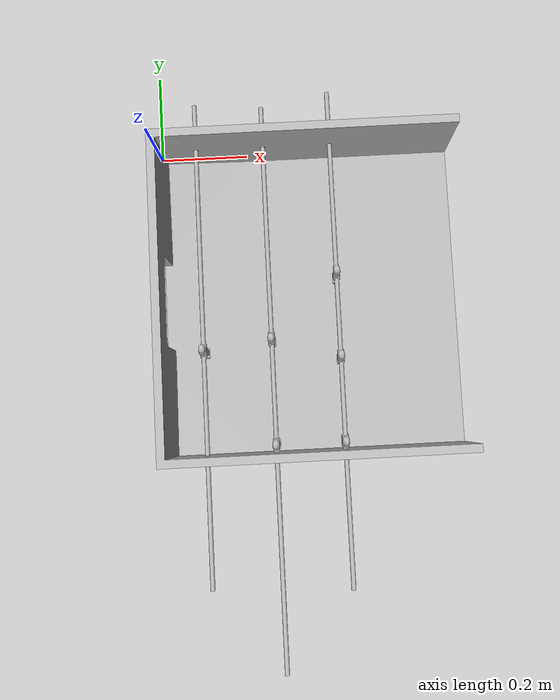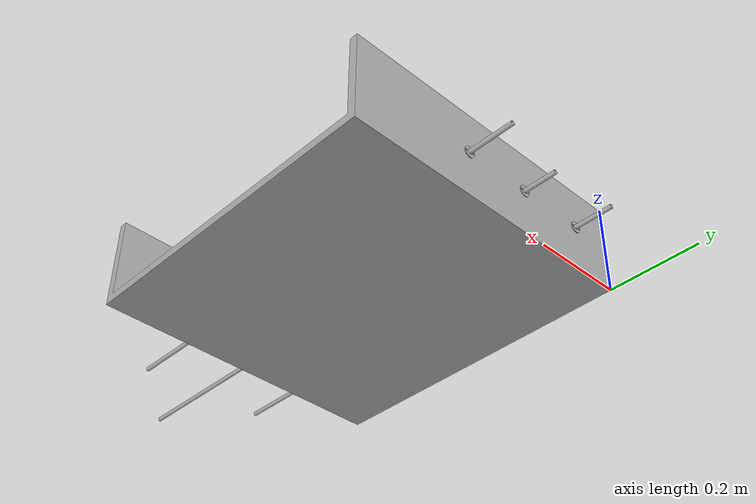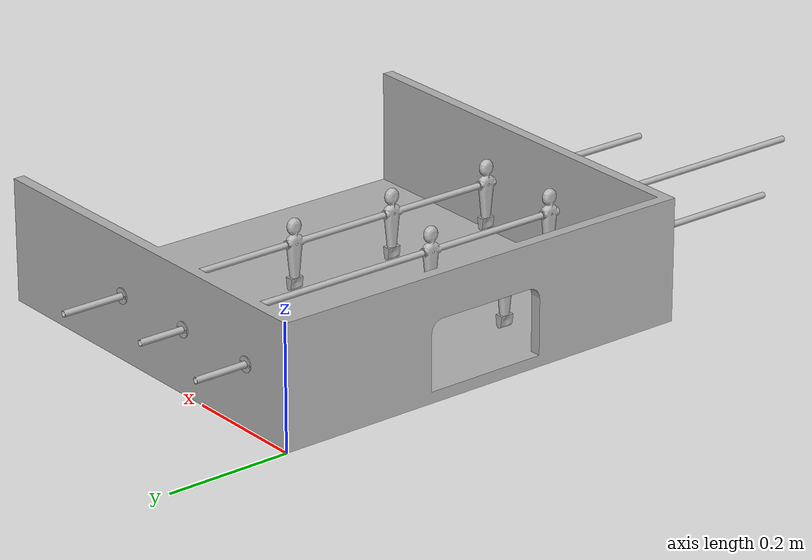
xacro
<?xml version="1.0" ?>
<robot name="futfullv5" xmlns:xacro="http://www.ros.org/wiki/xacro">

<xacro:include filename="$(find futfullv5_description)/urdf/materials.xacro" />
<xacro:include filename="$(find futfullv5_description)/urdf/futfullv5.trans" />
<xacro:include filename="$(find futfullv5_description)/urdf/futfullv5.gazebo" />

<link name="base_link">
  <inertial>
    <origin rpy="0 0 0" xyz="0.29247732204403404 -0.35807988890197734 0.05089353108091054"/>
    <mass value="1160"/>
    <inertia ixx="1000" ixy="0" ixz="0" iyy="1000" iyz="0" izz="1000"/>
  </inertial>
  <visual>
    <origin rpy="0 0 0" xyz="0 0 0"/>
    <geometry>
      <mesh filename="package://futfullv5_description/meshes/base_link.stl" scale="0.001 0.001 0.001"/>
    </geometry>
    <material name="silver"/>
  </visual>
  <collision>
    <origin rpy="0 0 0" xyz="0 0 0"/>
    <geometry>
      <mesh filename="package://futfullv5_description/meshes/base_link.stl" scale="0.001 0.001 0.001"/>
    </geometry>
  </collision>
</link>

<link name="link_fill_golie_1">
  <inertial>
    <origin rpy="0 0 0" xyz="-3.8274426683582163e-10 0.015063699106974108 4.768375000407943e-10"/>
    <mass value="0.006751086263023987"/>
    <inertia ixx="0.0" ixy="0.0" ixz="0.0" iyy="0.0" iyz="0.0" izz="0.0"/>
  </inertial>
  <visual>
    <origin rpy="0 0 0" xyz="-0.093 0.018 -0.103"/>
    <geometry>
      <mesh filename="package://futfullv5_description/meshes/link_fill_golie_1.stl" scale="0.001 0.001 0.001"/>
    </geometry>
    <material name="silver"/>
  </visual>
  <collision>
    <origin rpy="0 0 0" xyz="-0.093 0.018 -0.103"/>
    <geometry>
      <mesh filename="package://futfullv5_description/meshes/link_fill_golie_1.stl" scale="0.001 0.001 0.001"/>
    </geometry>
  </collision>
</link>

<link name="link_golie_1">
  <inertial>
    <origin rpy="0 0 0" xyz="-0.01799902092656594 -0.4632532318725868 -0.028375838044258958"/>
    <mass value="0.33174728345156196"/>
    <inertia ixx="0.012235" ixy="0.0" ixz="0.0" iyy="0.000237" iyz="-2.8e-05" izz="0.012006"/>
  </inertial>
  <visual>
    <origin rpy="0 0 0" xyz="-0.111 -0.0015 -0.121"/>
    <geometry>
      <mesh filename="package://futfullv5_description/meshes/link_golie_1.stl" scale="0.001 0.001 0.001"/>
    </geometry>
    <material name="silver"/>
  </visual>
  <collision>
    <origin rpy="0 0 0" xyz="-0.111 -0.0015 -0.121"/>
    <geometry>
      <mesh filename="package://futfullv5_description/meshes/link_golie_1.stl" scale="0.001 0.001 0.001"/>
    </geometry>
  </collision>
</link>

<link name="link_fill_defense_1">
  <inertial>
    <origin rpy="0 0 0" xyz="-3.827445860249412e-10 0.015063699106974152 4.768373196295528e-10"/>
    <mass value="0.006751086263023966"/>
    <inertia ixx="0.0" ixy="0.0" ixz="-0.0" iyy="0.0" iyz="-0.0" izz="0.0"/>
  </inertial>
  <visual>
    <origin rpy="0 0 0" xyz="-0.243 0.018 -0.103"/>
    <geometry>
      <mesh filename="package://futfullv5_description/meshes/link_fill_defense_1.stl" scale="0.001 0.001 0.001"/>
    </geometry>
    <material name="silver"/>
  </visual>
  <collision>
    <origin rpy="0 0 0" xyz="-0.243 0.018 -0.103"/>
    <geometry>
      <mesh filename="package://futfullv5_description/meshes/link_fill_defense_1.stl" scale="0.001 0.001 0.001"/>
    </geometry>
  </collision>
</link>

<link name="link_defense_1">
  <inertial>
    <origin rpy="0 0 0" xyz="-0.018033500912138373 -0.5627518749379135 -0.03027010243477561"/>
    <mass value="0.5575527186274128"/>
    <inertia ixx="0.024581" ixy="-0.0" ixz="-0.0" iyy="0.000459" iyz="-3.8e-05" izz="0.024136"/>
  </inertial>
  <visual>
    <origin rpy="0 0 0" xyz="-0.261 -0.0015 -0.121"/>
    <geometry>
      <mesh filename="package://futfullv5_description/meshes/link_defense_1.stl" scale="0.001 0.001 0.001"/>
    </geometry>
    <material name="silver"/>
  </visual>
  <collision>
    <origin rpy="0 0 0" xyz="-0.261 -0.0015 -0.121"/>
    <geometry>
      <mesh filename="package://futfullv5_description/meshes/link_defense_1.stl" scale="0.001 0.001 0.001"/>
    </geometry>
  </collision>
</link>

<link name="link_fill_attack_1">
  <inertial>
    <origin rpy="0 0 0" xyz="-3.8274466929166806e-10 0.01506369910697417 4.768374306518552e-10"/>
    <mass value="0.006751086263023945"/>
    <inertia ixx="0.0" ixy="0.0" ixz="-0.0" iyy="0.0" iyz="0.0" izz="0.0"/>
  </inertial>
  <visual>
    <origin rpy="0 0 0" xyz="-0.393 0.018 -0.103"/>
    <geometry>
      <mesh filename="package://futfullv5_description/meshes/link_fill_attack_1.stl" scale="0.001 0.001 0.001"/>
    </geometry>
    <material name="silver"/>
  </visual>
  <collision>
    <origin rpy="0 0 0" xyz="-0.393 0.018 -0.103"/>
    <geometry>
      <mesh filename="package://futfullv5_description/meshes/link_fill_attack_1.stl" scale="0.001 0.001 0.001"/>
    </geometry>
  </collision>
</link>

<link name="link_attack_1">
  <inertial>
    <origin rpy="0 0 0" xyz="-0.017998214210212304 -0.48997502692795714 -0.0318066917797455"/>
    <mass value="0.7480974035334914"/>
    <inertia ixx="0.028068" ixy="0.0" ixz="0.0" iyy="0.000671" iyz="-8.8e-05" izz="0.027416"/>
  </inertial>
  <visual>
    <origin rpy="0 0 0" xyz="-0.411 -0.0015 -0.121"/>
    <geometry>
      <mesh filename="package://futfullv5_description/meshes/link_attack_1.stl" scale="0.001 0.001 0.001"/>
    </geometry>
    <material name="silver"/>
  </visual>
  <collision>
    <origin rpy="0 0 0" xyz="-0.411 -0.0015 -0.121"/>
    <geometry>
      <mesh filename="package://futfullv5_description/meshes/link_attack_1.stl" scale="0.001 0.001 0.001"/>
    </geometry>
  </collision>
</link>

<joint name="rev_golie" type="continuous">
  <origin rpy="0 0 0" xyz="0.093 -0.018 0.103"/>
  <parent link="base_link"/>
  <child link="link_fill_golie_1"/>
  <axis xyz="-0.0 1.0 0.0"/>
</joint>

<joint name="slide_golie" type="prismatic">
  <origin rpy="0 0 0" xyz="0.018 0.0195 0.018"/>
  <parent link="link_fill_golie_1"/>
  <child link="link_golie_1"/>
  <axis xyz="-0.0 1.0 0.0"/>
  <limit effort="100" lower="0.0" upper="0.223" velocity="100"/>
</joint>

<joint name="rev_def" type="continuous">
  <origin rpy="0 0 0" xyz="0.243 -0.018 0.103"/>
  <parent link="base_link"/>
  <child link="link_fill_defense_1"/>
  <axis xyz="-0.0 1.0 0.0"/>
</joint>

<joint name="slide_def" type="prismatic">
  <origin rpy="0 0 0" xyz="0.018 0.0195 0.018"/>
  <parent link="link_fill_defense_1"/>
  <child link="link_defense_1"/>
  <axis xyz="-0.0 1.0 0.0"/>
  <limit effort="100" lower="0.0" upper="0.415" velocity="100"/>
</joint>

<joint name="rev_att" type="continuous">
  <origin rpy="0 0 0" xyz="0.393 -0.018 0.103"/>
  <parent link="base_link"/>
  <child link="link_fill_attack_1"/>
  <axis xyz="-0.0 1.0 0.0"/>
</joint>

<joint name="slide_att" type="prismatic">
  <origin rpy="0 0 0" xyz="0.018 0.0195 0.018"/>
  <parent link="link_fill_attack_1"/>
  <child link="link_attack_1"/>
  <axis xyz="-0.0 1.0 0.0"/>
  <limit effort="100" lower="0.0" upper="0.275" velocity="100"/>
</joint>

</robot>

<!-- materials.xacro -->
<robot name="futfullv5" xmlns:xacro="http://www.ros.org/wiki/xacro" >

<material name="silver">
  <color rgba="0.700 0.700 0.700 1.000"/>
</material>

</robot>

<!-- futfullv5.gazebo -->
<robot name="futfullv5" xmlns:xacro="http://www.ros.org/wiki/xacro" >

<xacro:property name="body_color" value="Gazebo/Silver" />

<gazebo> <plugin name="gazebo_ros_control" filename="libgazebo_ros_control.so">
  <robotNamespace>/futfullv5</robotNamespace>
  <robotSimType>gazebo_ros_control/DefaultRobotHWSim</robotSimType>
  <legacyModeNS>true</legacyModeNS>
</plugin>
</gazebo>

<gazebo reference="base_link">
  <material>${body_color}</material>
  <mu1>100</mu1>
  <mu2>100</mu2>
  <selfCollide>false</selfCollide>
  <gravity>true</gravity>
</gazebo>

<gazebo reference="link_fill_golie_1">
  <material>${body_color}</material>
  <mu1>0</mu1>
  <mu2>0</mu2>
  <selfCollide>false</selfCollide>
</gazebo>

<gazebo reference="link_golie_1">
  <material>${body_color}</material>
  <mu1>0</mu1>
  <mu2>0</mu2>
  <selfCollide>false</selfCollide>
</gazebo>

<gazebo reference="link_fill_defense_1">
  <material>${body_color}</material>
  <mu1>0</mu1>
  <mu2>0</mu2>
  <selfCollide>false</selfCollide>
</gazebo>

<gazebo reference="link_defense_1">
  <material>${body_color}</material>
  <mu1>0</mu1>
  <mu2>0</mu2>
  <selfCollide>false</selfCollide>
</gazebo>

<gazebo reference="link_fill_attack_1">
  <material>${body_color}</material>
  <mu1>0</mu1>
  <mu2>0</mu2>
  <selfCollide>false</selfCollide>
</gazebo>

<gazebo reference="link_attack_1">
  <material>${body_color}</material>
  <mu1>0</mu1>
  <mu2>0</mu2>
  <selfCollide>false</selfCollide>
</gazebo>

</robot>
